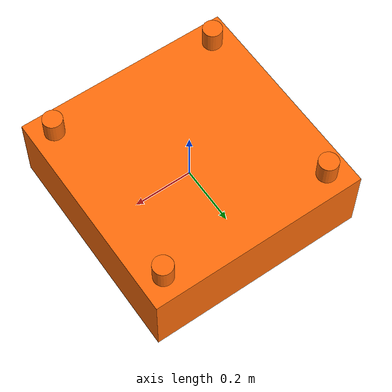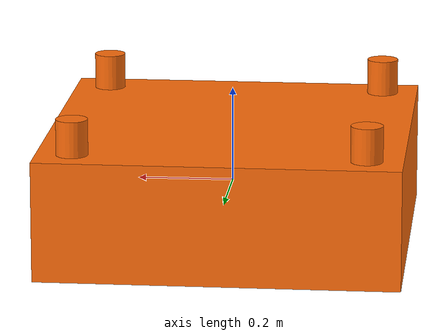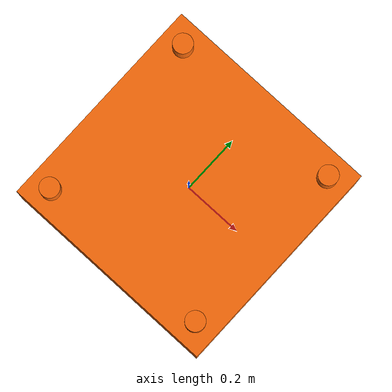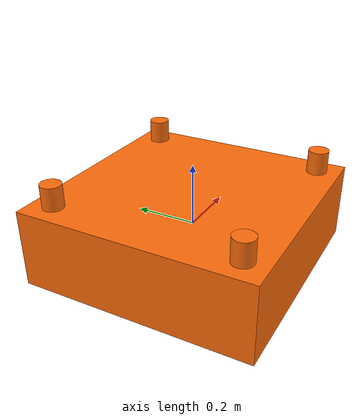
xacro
<?xml version="1.0"?>
<robot name="uwb_platform_model" xmlns:xacro="http://ros.org/wiki/xacro">

	<!-- uwb-platform include files -->
	<xacro:include filename="$(find test_simulation_description)/gazebo_model/models/uwb_platform/uwb_platform_parameters.xacro" />

	<xacro:include filename="$(find test_simulation_description)/gazebo_model/models/uwb_platform/link_joints.xacro" />

	<!-- platform base -->

	<link name="base_footprint"/>

	<joint name="base_footprint__${l00}" type="fixed">
		<parent link="base_footprint" />
		<child link="${l00}"/>
		<origin xyz="0 0 0" rpy="0 0 0"/>
	</joint>>

	<!-- Initialize a platform -->

	<xacro:m_platform_base
		name="${l00}"
		origin_xyz="0 0 0"
		origin_rpy="0 0 0"
		ixx="170.000" ixy="0" ixz="0"
		iyy="170.000" iyz="0"
		izz="170.000" />

	<!-- Initialize the uwb modules -->
	<xacro:m_uwb_anchor
		name="${l01}"
		parent="${l00}"
		origin_xyz="-0.30 0.30 0.12"
		origin_rpy="0 0 0"
		ixx="0" ixy="0" ixz="0"
		iyy="0" iyz="0"
		izz="0" />

	<xacro:m_uwb_anchor
                name="${l02}"
                parent="${l00}"
                origin_xyz="0.30 0.30 0.12"
                origin_rpy="0 0 0"
                ixx="0" ixy="0" ixz="0"
                iyy="0" iyz="0"
                izz="0" />

	<xacro:m_uwb_anchor
                name="${l03}"
                parent="${l00}"
                origin_xyz="-0.30 -0.30 0.12"
                origin_rpy="0 0 0"
                ixx="0" ixy="0" ixz="0"
                iyy="0" iyz="0"
                izz="0" />

	<xacro:m_uwb_anchor
                name="${l04}"
                parent="${l00}"
                origin_xyz="0.30 -0.30 0.12"
                origin_rpy="0 0 0"
                ixx="0" ixy="0" ixz="0"
                iyy="0" iyz="0"
                izz="0" />

	<gazebo reference="${l00}">
    		<material>Gazebo/Orange</material>
  	</gazebo>

	<gazebo reference="${l01}">
                <material>Gazebo/Orange</material>
        </gazebo>

	<gazebo reference="${l02}">
                <material>Gazebo/Orange</material>
        </gazebo>

	<gazebo reference="${l03}">
                <material>Gazebo/Orange</material>
        </gazebo>

	<gazebo reference="${l04}">
                <material>Gazebo/Orange</material>
        </gazebo>

</robot>

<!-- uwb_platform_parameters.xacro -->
<robot xmlns:xacro="http://www.ros.org/wiki/xacro">

    <xacro:property name="l00" value="uwb_platform_base_link" />
    <xacro:property name="l01" value="uwb_anchor_0" />
    <xacro:property name="l02" value="uwb_anchor_1" />
    <xacro:property name="l03" value="uwb_anchor_2" />
    <xacro:property name="l04" value="uwb_anchor_3" />

</robot>

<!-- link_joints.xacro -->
<robot xmlns:xacro="http://www.ros.org/wiki/xacro">
	<material name="orange">
		<color rgba="${255/255} ${108/255} ${10/255} 1.0"/>
	</material>

	<xacro:macro name="m_platform_base" params="name origin_xyz origin_rpy ixx ixy ixz iyy iyz izz">

		<link name="${name}">
			<inertial>
				<mass value="1024" />
				<origin rpy="${origin_rpy}" xyz="${origin_xyz}" />
				<inertia ixx="${ixx}" ixy="${ixy}" ixz="${ixz}" iyy="${iyy}" iyz="${iyz}" izz="${izz}" />
			</inertial>

			<collision>
				<origin rpy="${origin_rpy}" xyz="${origin_xyz}"/>
				<geometry>
					<box size="0.75 0.75 0.25" />
				</geometry>
			</collision>

			<visual name="x">
				<origin rpy="${origin_rpy}" xyz="${origin_xyz}" />
				<geometry>
					<box size="0.75 0.75 0.25" />
				</geometry>
				<material name="orange"/>
			</visual>

		</link>
	</xacro:macro>

	<xacro:macro name="m_uwb_anchor" params="name parent origin_xyz origin_rpy ixx ixy ixz iyy iyz izz">

    		<link name="${name}">
        		<inertial>
				<mass value="30" />
				<origin rpy="${origin_rpy}" xyz="${origin_xyz}" />
				<inertia ixx="${ixx}" ixy="${ixy}" ixz="${ixz}" iyy="${iyy}" iyz="${iyz}" izz="${izz}" />
			</inertial>

			<collision>
				<origin rpy="${origin_rpy}" xyz="${origin_xyz}"/>
				<geometry>
					<cylinder radius="0.023" length="0.08" />
				</geometry>
			</collision>

			<visual>
				<origin rpy="0 0 0" xyz="0 0 0.04" />
				<geometry>
					<cylinder radius="0.033" length="0.08" />
				</geometry>
				<material name="orange"/>
			</visual>

		</link>

		<joint name="${name}_joint" type="fixed">
			<parent link="${parent}"/>
			<child link="${name}"/>
			<axis xyz="0 1 0"/>
			<origin rpy="${origin_rpy}" xyz="${origin_xyz}"/>
			<limit effort="30" velocity="1.0" lower="-2.2" upper="0.7"/>
		</joint>

	</xacro:macro>

</robot>
